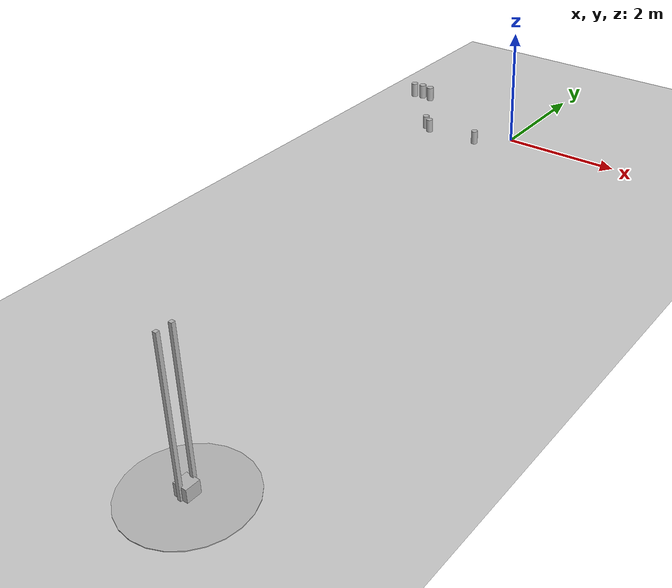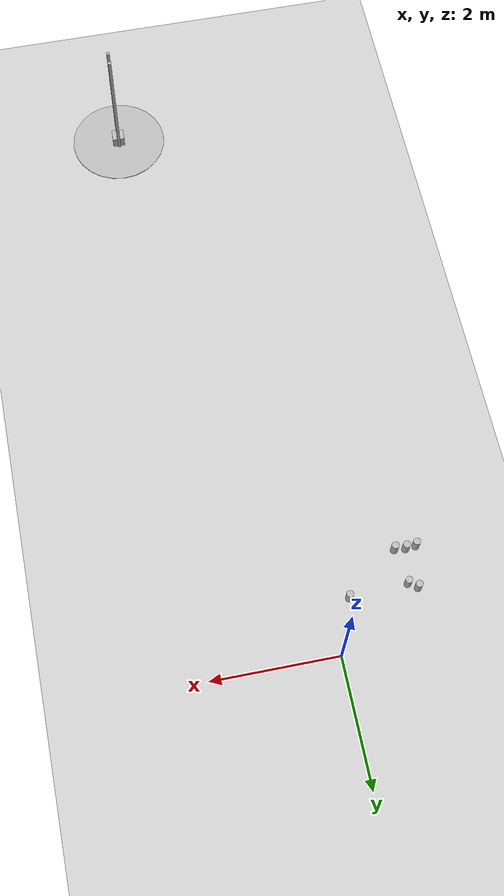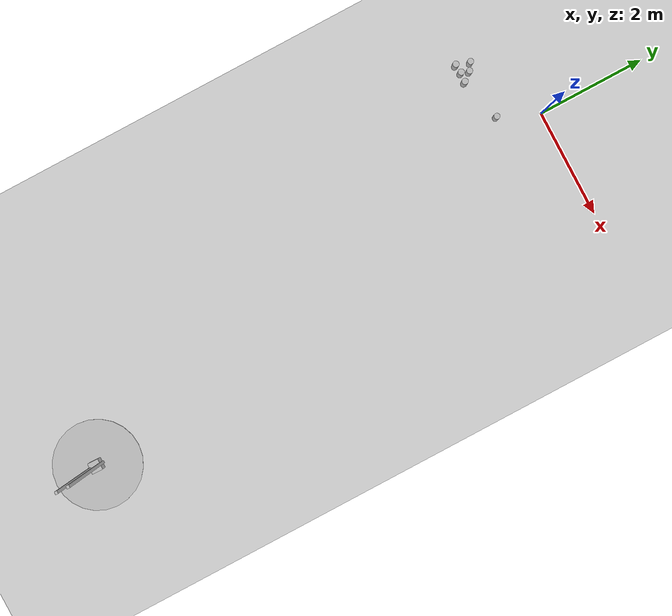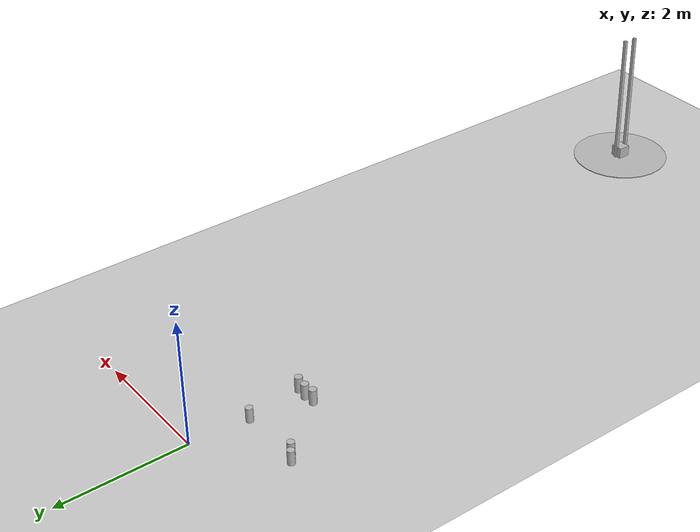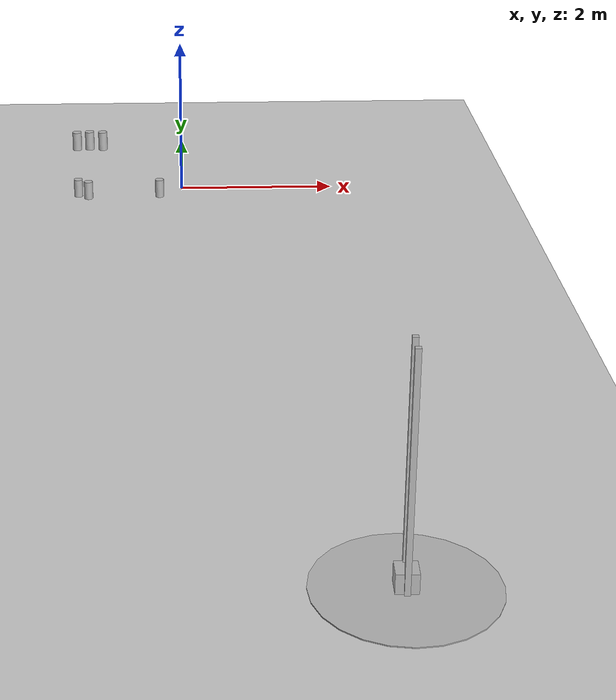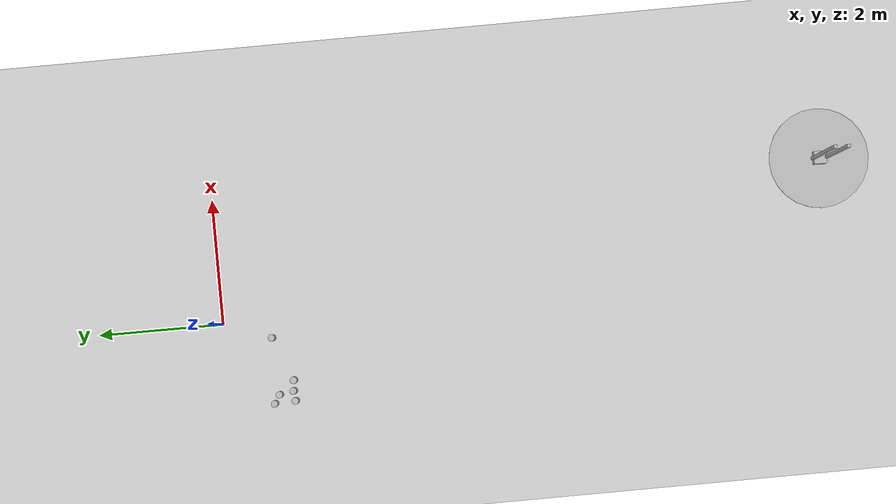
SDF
<sdf version="1.6">
 <world name="default">
  <light name="sun" type="directional">
   <pose>0 0 15 0 -0 0</pose>
   <diffuse>0.8 0.8 0.8 1</diffuse>
   <specular>0.2 0.2 0.2 1</specular>
   <attenuation>
    <range>1000</range>
    <constant>0.9</constant>
    <linear>0.01</linear>
    <quadratic>0.001</quadratic>
   </attenuation>
   <direction>-0.5 0.1 -0.9</direction>
  </light>
  <model name="ground_plane">
   <static>1</static>
   <link name="link">
    <collision name="collision">
     <geometry><plane><normal>0 0 1</normal><size>100 100</size></plane></geometry>
     <surface><friction><ode><mu>100</mu><mu2>50</mu2></ode></friction></surface>
    </collision>
    <visual name="visual">
     <transparency>1</transparency>
     <cast_shadows>0</cast_shadows>
     <geometry><plane><normal>0 0 1</normal><size>100 100</size></plane></geometry>
     <material>
      <script><uri>file://media/materials/scripts/gazebo.material</uri><name>Gazebo/Grey</name></script>
     </material>
    </visual>
   </link>
  </model>
  <gravity>0 0 -9.8</gravity>
  <magnetic_field>6e-06 2.3e-05 -4.2e-05</magnetic_field>
  <atmosphere type="adiabatic"/>
  <physics name="default_physics" default="0" type="ode">
   <max_step_size>0.001</max_step_size>
   <real_time_factor>1</real_time_factor>
   <real_time_update_rate>1000</real_time_update_rate>
  </physics>
  <scene><ambient>0.4 0.4 0.4 1</ambient><background>0.7 0.7 0.7 1</background><shadows>1</shadows></scene>
  <spherical_coordinates>
   <surface_model>EARTH_WGS84</surface_model>
   <latitude_deg>0</latitude_deg>
   <longitude_deg>0</longitude_deg>
   <elevation>0</elevation>
   <heading_deg>0</heading_deg>
  </spherical_coordinates>
  <model name="beer">
   <link name="link">
    <pose>0 0 0.115 0 -0 0</pose>
    <inertial>
     <mass>0.39</mass>
     <inertia><ixx>0.00058</ixx><ixy>0</ixy><ixz>0</ixz><iyy>0.00058</iyy><iyz>0</iyz><izz>0.00019</izz></inertia>
    </inertial>
    <collision name="collision">
     <geometry><cylinder><radius>0.055</radius><length>0.23</length></cylinder></geometry>
    </collision>
    <visual name="visual">
     <geometry><cylinder><radius>0.055</radius><length>0.23</length></cylinder></geometry>
     <material>
      <script>
       <uri>model://beer/materials/scripts</uri>
       <uri>model://beer/materials/textures</uri>
       <name>Beer/Diffuse</name>
      </script>
     </material>
    </visual>
   </link>
   <pose>-1.14605 -1.12885 0.964754 -2.7e-05 -5e-06 -0.01441</pose>
  </model>
  <model name="beer_0">
   <link name="link">
    <pose>0 0 0.115 0 -0 0</pose>
    <inertial>
     <mass>0.39</mass>
     <inertia><ixx>0.00058</ixx><ixy>0</ixy><ixz>0</ixz><iyy>0.00058</iyy><iyz>0</iyz><izz>0.00019</izz></inertia>
    </inertial>
    <collision name="collision">
     <geometry><cylinder><radius>0.055</radius><length>0.23</length></cylinder></geometry>
    </collision>
    <visual name="visual">
     <geometry><cylinder><radius>0.055</radius><length>0.23</length></cylinder></geometry>
     <material>
      <script>
       <uri>model://beer/materials/scripts</uri>
       <uri>model://beer/materials/textures</uri>
       <name>Beer/Diffuse</name>
      </script>
     </material>
    </visual>
   </link>
   <pose>-1.30222 -1.14611 0.964762 5e-06 -1.2e-05 -0.102329</pose>
  </model>
  <model name="beer_1">
   <link name="link">
    <pose>0 0 0.115 0 -0 0</pose>
    <inertial>
     <mass>0.39</mass>
     <inertia><ixx>0.00058</ixx><ixy>0</ixy><ixz>0</ixz><iyy>0.00058</iyy><iyz>0</iyz><izz>0.00019</izz></inertia>
    </inertial>
    <collision name="collision">
     <geometry><cylinder><radius>0.055</radius><length>0.23</length></cylinder></geometry>
    </collision>
    <visual name="visual">
     <geometry><cylinder><radius>0.055</radius><length>0.23</length></cylinder></geometry>
     <material>
      <script>
       <uri>model://beer/materials/scripts</uri>
       <uri>model://beer/materials/textures</uri>
       <name>Beer/Diffuse</name>
      </script>
     </material>
    </visual>
   </link>
   <pose>-0.980416 -1.14714 0.964762 -4e-06 4e-06 -0.015311</pose>
  </model>
  <model name="beer_2">
   <link name="link">
    <pose>0 0 0.115 0 -0 0</pose>
    <inertial>
     <mass>0.39</mass>
     <inertia><ixx>0.00058</ixx><ixy>0</ixy><ixz>0</ixz><iyy>0.00058</iyy><iyz>0</iyz><izz>0.00019</izz></inertia>
    </inertial>
    <collision name="collision">
     <geometry><cylinder><radius>0.055</radius><length>0.23</length></cylinder></geometry>
    </collision>
    <visual name="visual">
     <geometry><cylinder><radius>0.055</radius><length>0.23</length></cylinder></geometry>
     <material>
      <script>
       <uri>model://beer/materials/scripts</uri>
       <uri>model://beer/materials/textures</uri>
       <name>Beer/Diffuse</name>
      </script>
     </material>
    </visual>
   </link>
   <pose>-1.3371 -0.746847 0.189804 1.3e-05 6.8e-05 -0.002528</pose>
  </model>
  <model name="beer_3">
   <link name="link">
    <pose>0 0 0.115 0 -0 0</pose>
    <inertial>
     <mass>0.39</mass>
     <inertia><ixx>0.00058</ixx><ixy>0</ixy><ixz>0</ixz><iyy>0.00058</iyy><iyz>0</iyz><izz>0.00019</izz></inertia>
    </inertial>
    <collision name="collision">
     <geometry><cylinder><radius>0.055</radius><length>0.23</length></cylinder></geometry>
    </collision>
    <visual name="visual">
     <geometry><cylinder><radius>0.055</radius><length>0.23</length></cylinder></geometry>
     <material>
      <script>
       <uri>model://beer/materials/scripts</uri>
       <uri>model://beer/materials/textures</uri>
       <name>Beer/Diffuse</name>
      </script>
     </material>
    </visual>
   </link>
   <pose>-1.2027 -0.836436 0.189804 1.2e-05 6.6e-05 -0.002476</pose>
  </model>
  <model name="mass_on_rails">
   <link name="base">
    <inertial>
     <mass>100</mass>
     <inertia><ixx>1</ixx><ixy>0</ixy><ixz>0</ixz><iyy>1</iyy><iyz>0</iyz><izz>1</izz></inertia>
    </inertial>
    <visual name="vis_base">
     <pose>0 0 0.01 0 -0 0</pose>
     <geometry><cylinder><radius>0.8</radius><length>0.01</length></cylinder></geometry>
    </visual>
    <collision name="col_base">
     <pose>0 0 0.01 0 -0 0</pose>
     <geometry><cylinder><radius>0.8</radius><length>0.01</length></cylinder></geometry>
    </collision>
    <visual name="vis_rail1">
     <pose>0 0.1 1.1 0 -0 0</pose>
     <geometry><box><size>0.05 0.05 2.2</size></box></geometry>
    </visual>
    <collision name="col_rail1">
     <pose>0 0.1 1.1 0 -0 0</pose>
     <geometry><box><size>0.05 0.05 2.2</size></box></geometry>
    </collision>
    <visual name="vis_rail2">
     <pose>0 -0.1 1.1 0 -0 0</pose>
     <geometry><box><size>0.05 0.05 2.2</size></box></geometry>
    </visual>
    <collision name="col_rail2">
     <pose>0 -0.1 1.1 0 -0 0</pose>
     <geometry><box><size>0.05 0.05 2.2</size></box></geometry>
    </collision>
   </link>
   <link name="mass">
    <inertial>
     <mass>0.1</mass>
     <pose>0 0 0.1 0 -0 0</pose>
     <inertia><ixx>0.00067</ixx><ixy>0</ixy><ixz>0</ixz><iyy>0.00067</iyy><iyz>0</iyz><izz>0.00067</izz></inertia>
    </inertial>
    <visual name="visual">
     <pose>0 0 0.1 0 -0 0</pose>
     <geometry><box><size>0.2 0.2 0.2</size></box></geometry>
    </visual>
    <collision name="collision">
     <pose>0 0 0.1 0 -0 0</pose>
     <geometry><box><size>0.2 0.2 0.2</size></box></geometry>
    </collision>
   </link>
   <joint name="joint" type="prismatic">
    <parent>base</parent>
    <child>mass</child>
    <axis>
     <dynamics>
      <damping>0.01</damping>
      <friction>0.01</friction>
      <spring_reference>0</spring_reference>
      <spring_stiffness>0</spring_stiffness>
     </dynamics>
     <xyz>0 0 1</xyz>
     <limit><lower>0</lower><upper>2</upper></limit>
     <use_parent_model_frame>0</use_parent_model_frame>
    </axis>
   </joint>
   <pose>1.775 -9.77246 0.1898 0 0 -0.028748</pose>
  </model>
  <model name="beer_4">
   <link name="link">
    <pose>0 0 0.115 0 -0 0</pose>
    <inertial>
     <mass>0.39</mass>
     <inertia><ixx>0.00058</ixx><ixy>0</ixy><ixz>0</ixz><iyy>0.00058</iyy><iyz>0</iyz><izz>0.00019</izz></inertia>
    </inertial>
    <collision name="collision">
     <geometry><cylinder><radius>0.055</radius><length>0.23</length></cylinder></geometry>
    </collision>
    <visual name="visual">
     <geometry><cylinder><radius>0.055</radius><length>0.23</length></cylinder></geometry>
     <material>
      <script>
       <uri>model://beer/materials/scripts</uri>
       <uri>model://beer/materials/textures</uri>
       <name>Beer/Diffuse</name>
      </script>
     </material>
    </visual>
   </link>
   <pose>-0.287213 -0.791432 0.189802 2.7e-05 1.1e-05 -0.98358</pose>
  </model>
 </world>
</sdf>
